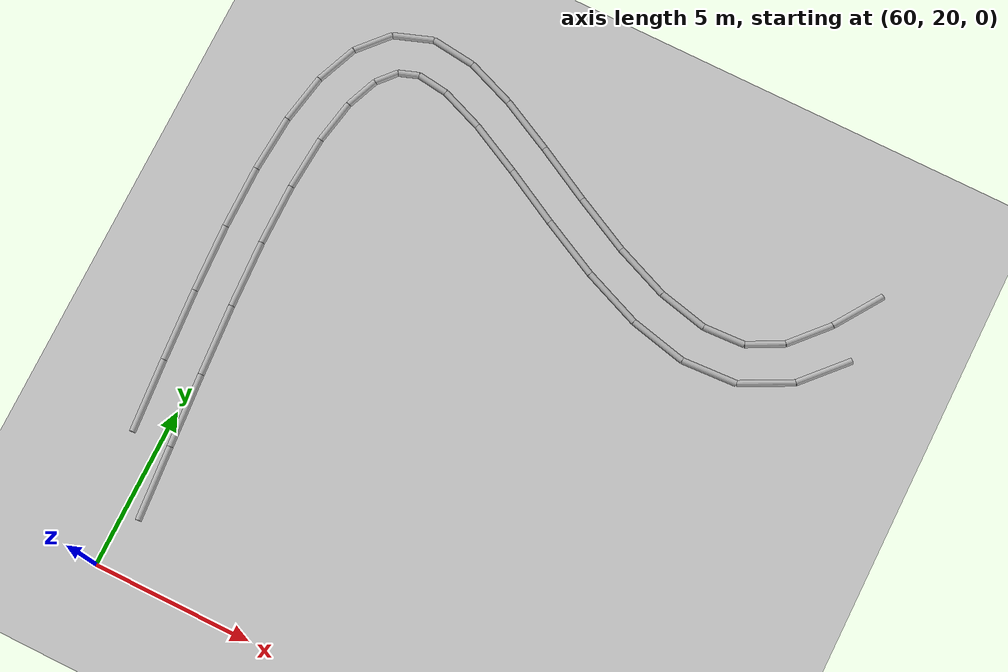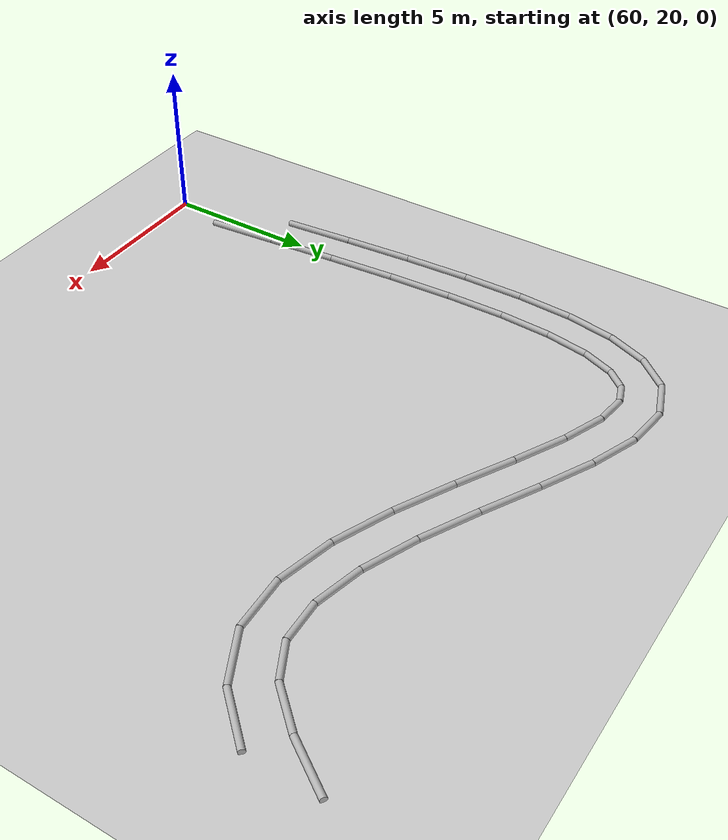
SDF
<sdf version="1.6">
 <world name="default">
  <model name="ground_plane">
   <static>true</static>
   <link name="link">
    <collision name="collision">
     <geometry><plane><normal>0 0 1</normal><size>5000 5000</size></plane></geometry>
     <surface>
      <friction>
       <ode><mu>50</mu></ode>
       <bullet><friction>1</friction><rolling_friction>0.1</rolling_friction></bullet>
      </friction>
     </surface>
    </collision>
    <visual name="visual">
     <geometry><plane><normal>0 0 1</normal><size>5000 5000</size></plane></geometry>
     <material>
      <ambient>0.8 0.8 0.8 1</ambient>
      <diffuse>0.8 0.8 0.8 1</diffuse>
      <specular>0.8 0.8 0.8 1</specular>
     </material>
    </visual>
    <inertial>
     <mass>1</mass>
     <inertia><ixx>1</ixx><ixy>0</ixy><ixz>0</ixz><iyy>1</iyy><iyz>0</iyz><izz>1</izz></inertia>
    </inertial>
   </link>
  </model>
  <model name="line_model">
   <static>true</static>
   <link name="cylinder_(77.15760487872598, 37.420404247764)_(76.18096325448104, 35.959355968379846)">
    <pose>76.66928406660351 36.68988010807192 0.05 0 1.5707963267948966 -2.160034375592786</pose>
    <visual name="visual">
     <geometry><cylinder><radius>0.1</radius><length>1.757410292703207</length></cylinder></geometry>
    </visual>
    <collision name="collision">
     <geometry><cylinder><radius>0.1</radius><length>1.757410292703207</length></cylinder></geometry>
    </collision>
   </link>
   <link name="cylinder_(76.18096325448104, 35.959355968379846)_(75.16189564360738, 34.837754107777634)">
    <pose>75.67142944904421 35.39855503807874 0.05 0 1.5707963267948966 -2.3083328533729532</pose>
    <visual name="visual">
     <geometry><cylinder><radius>0.1</radius><length>1.515417278916305</length></cylinder></geometry>
    </visual>
    <collision name="collision">
     <geometry><cylinder><radius>0.1</radius><length>1.515417278916305</length></cylinder></geometry>
    </collision>
   </link>
   <link name="cylinder_(75.16189564360738, 34.837754107777634)_(74.08070139135593, 34.278101917093394)">
    <pose>74.62129851748165 34.55792801243551 0.05 0 1.5707963267948966 -2.6639453863870792</pose>
    <visual name="visual">
     <geometry><cylinder><radius>0.1</radius><length>1.2174529090027426</length></cylinder></geometry>
    </visual>
    <collision name="collision">
     <geometry><cylinder><radius>0.1</radius><length>1.2174529090027426</length></cylinder></geometry>
    </collision>
   </link>
   <link name="cylinder_(74.08070139135593, 34.278101917093394)_(72.77386654651816, 34.21410954215724)">
    <pose>73.42728396893705 34.24610572962531 0.05 0 1.5707963267948966 -3.0926642817840433</pose>
    <visual name="visual">
     <geometry><cylinder><radius>0.1</radius><length>1.3084006785889857</length></cylinder></geometry>
    </visual>
    <collision name="collision">
     <geometry><cylinder><radius>0.1</radius><length>1.3084006785889857</length></cylinder></geometry>
    </collision>
   </link>
   <link name="cylinder_(72.77386654651816, 34.21410954215724)_(71.23810365712002, 34.571615126325)">
    <pose>72.00598510181909 34.392862334241116 0.05 0 1.5707963267948966 2.912878939105555</pose>
    <visual name="visual">
     <geometry><cylinder><radius>0.1</radius><length>1.5768252582843998</length></cylinder></geometry>
    </visual>
    <collision name="collision">
     <geometry><cylinder><radius>0.1</radius><length>1.5768252582843998</length></cylinder></geometry>
    </collision>
   </link>
   <link name="cylinder_(71.23810365712002, 34.571615126325)_(69.56526277833004, 35.25021989044286)">
    <pose>70.40168321772504 34.91091750838393 0.05 0 1.5707963267948966 2.756216440757653</pose>
    <visual name="visual">
     <geometry><cylinder><radius>0.1</radius><length>1.8052426517325304</length></cylinder></geometry>
    </visual>
    <collision name="collision">
     <geometry><cylinder><radius>0.1</radius><length>1.8052426517325304</length></cylinder></geometry>
    </collision>
   </link>
   <link name="cylinder_(69.56526277833004, 35.25021989044286)_(67.84224002252117, 36.11618392326214)">
    <pose>68.7037514004256 35.6832019068525 0.05 0 1.5707963267948966 2.675879813267719</pose>
    <visual name="visual">
     <geometry><cylinder><radius>0.1</radius><length>1.9283934046692426</length></cylinder></geometry>
    </visual>
    <collision name="collision">
     <geometry><cylinder><radius>0.1</radius><length>1.9283934046692426</length></cylinder></geometry>
    </collision>
   </link>
   <link name="cylinder_(67.84224002252117, 36.11618392326214)_(66.14093652019167, 37.027943111810046)">
    <pose>66.99158827135642 36.572063517536094 0.05 0 1.5707963267948966 2.6496251953056777</pose>
    <visual name="visual">
     <geometry><cylinder><radius>0.1</radius><length>1.9302171963124093</length></cylinder></geometry>
    </visual>
    <collision name="collision">
     <geometry><cylinder><radius>0.1</radius><length>1.9302171963124093</length></cylinder></geometry>
    </collision>
   </link>
   <link name="cylinder_(66.14093652019167, 37.027943111810046)_(64.52025449451253, 37.844097197257604)">
    <pose>65.3305955073521 37.43602015453382 0.05 0 1.5707963267948966 2.6750797182967294</pose>
    <visual name="visual">
     <geometry><cylinder><radius>0.1</radius><length>1.8145847237184034</length></cylinder></geometry>
    </visual>
    <collision name="collision">
     <geometry><cylinder><radius>0.1</radius><length>1.8145847237184034</length></cylinder></geometry>
    </collision>
   </link>
   <link name="cylinder_(64.52025449451253, 37.844097197257604)_(63.01762760568316, 38.42287492648279)">
    <pose>63.768941050097844 38.1334860618702 0.05 0 1.5707963267948966 2.773929430784182</pose>
    <visual name="visual">
     <geometry><cylinder><radius>0.1</radius><length>1.6102394936406483</length></cylinder></geometry>
    </visual>
    <collision name="collision">
     <geometry><cylinder><radius>0.1</radius><length>1.6102394936406483</length></cylinder></geometry>
    </collision>
   </link>
   <link name="cylinder_(63.01762760568316, 38.42287492648279)_(61.62426686438283, 38.592829259338814)">
    <pose>62.320947235032996 38.5078520929108 0.05 0 1.5707963267948966 3.0202178176229197</pose>
    <visual name="visual">
     <geometry><cylinder><radius>0.1</radius><length>1.4036875117537853</length></cylinder></geometry>
    </visual>
    <collision name="collision">
     <geometry><cylinder><radius>0.1</radius><length>1.4036875117537853</length></cylinder></geometry>
    </collision>
   </link>
   <link name="cylinder_(61.62426686438283, 38.592829259338814)_(60.42229732265592, 38.164679562914976)">
    <pose>61.02328209351938 38.37875441112689 0.05 0 1.5707963267948966 -2.7993991479869305</pose>
    <visual name="visual">
     <geometry><cylinder><radius>0.1</radius><length>1.275947860136543</length></cylinder></geometry>
    </visual>
    <collision name="collision">
     <geometry><cylinder><radius>0.1</radius><length>1.275947860136543</length></cylinder></geometry>
    </collision>
   </link>
   <link name="cylinder_(60.42229732265592, 38.164679562914976)_(59.580198368407444, 37.221820516491704)">
    <pose>60.00124784553168 37.693250039703344 0.05 0 1.5707963267948966 -2.299804776531729</pose>
    <visual name="visual">
     <geometry><cylinder><radius>0.1</radius><length>1.2641652701164443</length></cylinder></geometry>
    </visual>
    <collision name="collision">
     <geometry><cylinder><radius>0.1</radius><length>1.2641652701164443</length></cylinder></geometry>
    </collision>
   </link>
   <link name="cylinder_(59.580198368407444, 37.221820516491704)_(59.06511947305991, 35.945814277640835)">
    <pose>59.32265892073367 36.58381739706627 0.05 0 1.5707963267948966 -1.9544580784170469</pose>
    <visual name="visual">
     <geometry><cylinder><radius>0.1</radius><length>1.3760443997265412</length></cylinder></geometry>
    </visual>
    <collision name="collision">
     <geometry><cylinder><radius>0.1</radius><length>1.3760443997265412</length></cylinder></geometry>
    </collision>
   </link>
   <link name="cylinder_(59.06511947305991, 35.945814277640835)_(58.775828783934834, 34.398682107155686)">
    <pose>58.920474128497375 35.17224819239826 0.05 0 1.5707963267948966 -1.7556468335398057</pose>
    <visual name="visual">
     <geometry><cylinder><radius>0.1</radius><length>1.5739463319200402</length></cylinder></geometry>
    </visual>
    <collision name="collision">
     <geometry><cylinder><radius>0.1</radius><length>1.5739463319200402</length></cylinder></geometry>
    </collision>
   </link>
   <link name="cylinder_(58.775828783934834, 34.398682107155686)_(58.65215696140401, 32.61141463670493)">
    <pose>58.71399287266942 33.50504837193031 0.05 0 1.5707963267948966 -1.6398822390629204</pose>
    <visual name="visual">
     <geometry><cylinder><radius>0.1</radius><length>1.7915411607383027</length></cylinder></geometry>
    </visual>
    <collision name="collision">
     <geometry><cylinder><radius>0.1</radius><length>1.7915411607383027</length></cylinder></geometry>
    </collision>
   </link>
   <link name="cylinder_(58.65215696140401, 32.61141463670493)_(58.65453021128138, 30.622022155483855)">
    <pose>58.6533435863427 31.61671839609439 0.05 0 1.5707963267948966 -1.569603375291381</pose>
    <visual name="visual">
     <geometry><cylinder><radius>0.1</radius><length>1.9893938968072469</length></cylinder></geometry>
    </visual>
    <collision name="collision">
     <geometry><cylinder><radius>0.1</radius><length>1.9893938968072469</length></cylinder></geometry>
    </collision>
   </link>
   <link name="cylinder_(58.65453021128138, 30.622022155483855)_(58.74976085944394, 28.47510862746113)">
    <pose>58.70214553536266 29.548565391472494 0.05 0 1.5707963267948966 -1.526468381710071</pose>
    <visual name="visual">
     <geometry><cylinder><radius>0.1</radius><length>2.14902456318127</length></cylinder></geometry>
    </visual>
    <collision name="collision">
     <geometry><cylinder><radius>0.1</radius><length>2.14902456318127</length></cylinder></geometry>
    </collision>
   </link>
   <link name="cylinder_(58.74976085944394, 28.47510862746113)_(58.9066471481771, 26.21888812536639)">
    <pose>58.82820400381052 27.346998376413758 0.05 0 1.5707963267948966 -1.5013730744378355</pose>
    <visual name="visual">
     <geometry><cylinder><radius>0.1</radius><length>2.261668468557029</length></cylinder></geometry>
    </visual>
    <collision name="collision">
     <geometry><cylinder><radius>0.1</radius><length>2.261668468557029</length></cylinder></geometry>
    </collision>
   </link>
   <link name="cylinder_(58.9066471481771, 26.21888812536639)_(59.09466042212523, 23.903551695813437)">
    <pose>59.000653785151165 25.061219910589912 0.05 0 1.5707963267948966 -1.4897706728845757</pose>
    <visual name="visual">
     <geometry><cylinder><radius>0.1</radius><length>2.3229575487287133</length></cylinder></geometry>
    </visual>
    <collision name="collision">
     <geometry><cylinder><radius>0.1</radius><length>2.3229575487287133</length></cylinder></geometry>
    </collision>
   </link>
   <link name="cylinder_(77.14481329374476, 35.24451815333971)_(75.92539158931905, 33.911971227788044)">
    <pose>76.5351024415319 34.57824469056388 0.05 0 1.5707963267948966 -2.311894882018518</pose>
    <visual name="visual">
     <geometry><cylinder><radius>0.1</radius><length>1.8062864119573379</length></cylinder></geometry>
    </visual>
    <collision name="collision">
     <geometry><cylinder><radius>0.1</radius><length>1.8062864119573379</length></cylinder></geometry>
    </collision>
   </link>
   <link name="cylinder_(75.92539158931905, 33.911971227788044)_(74.37231957365518, 33.11407492610371)">
    <pose>75.14885558148711 33.51302307694588 0.05 0 1.5707963267948966 -2.6670028208831704</pose>
    <visual name="visual">
     <geometry><cylinder><radius>0.1</radius><length>1.746044442183468</length></cylinder></geometry>
    </visual>
    <collision name="collision">
     <geometry><cylinder><radius>0.1</radius><length>1.746044442183468</length></cylinder></geometry>
    </collision>
   </link>
   <link name="cylinder_(74.37231957365518, 33.11407492610371)_(72.64186589929245, 33.021391709167396)">
    <pose>73.50709273647382 33.06773331763556 0.05 0 1.5707963267948966 -3.0880837129295338</pose>
    <visual name="visual">
     <geometry><cylinder><radius>0.1</radius><length>1.732933956565312</length></cylinder></geometry>
    </visual>
    <collision name="collision">
     <geometry><cylinder><radius>0.1</radius><length>1.732933956565312</length></cylinder></geometry>
    </collision>
   </link>
   <link name="cylinder_(72.64186589929245, 33.021391709167396)_(70.85941832321377, 33.43293280983619)">
    <pose>71.75064211125311 33.227162259501796 0.05 0 1.5707963267948966 2.914683523977031</pose>
    <visual name="visual">
     <geometry><cylinder><radius>0.1</radius><length>1.8293401649251697</length></cylinder></geometry>
    </visual>
    <collision name="collision">
     <geometry><cylinder><radius>0.1</radius><length>1.8293401649251697</length></cylinder></geometry>
    </collision>
   </link>
   <link name="cylinder_(70.85941832321377, 33.43293280983619)_(69.05925844043506, 34.16212080946197)">
    <pose>69.95933838182441 33.79752680964908 0.05 0 1.5707963267948966 2.756724561383505</pose>
    <visual name="visual">
     <geometry><cylinder><radius>0.1</radius><length>1.9422385904837032</length></cylinder></geometry>
    </visual>
    <collision name="collision">
     <geometry><cylinder><radius>0.1</radius><length>1.9422385904837032</length></cylinder></geometry>
    </collision>
   </link>
   <link name="cylinder_(69.05925844043506, 34.16212080946197)_(67.28062178876777, 35.05571942149148)">
    <pose>68.16994011460142 34.60892011547672 0.05 0 1.5707963267948966 2.6760216996807062</pose>
    <visual name="visual">
     <geometry><cylinder><radius>0.1</radius><length>1.9904941140519061</length></cylinder></geometry>
    </visual>
    <collision name="collision">
     <geometry><cylinder><radius>0.1</radius><length>1.9904941140519061</length></cylinder></geometry>
    </collision>
   </link>
   <link name="cylinder_(67.28062178876777, 35.05571942149148)_(65.57773888789832, 35.96831656109553)">
    <pose>66.42918033833305 35.512017991293504 0.05 0 1.5707963267948966 2.649629062651305</pose>
    <visual name="visual">
     <geometry><cylinder><radius>0.1</radius><length>1.9320051017756277</length></cylinder></geometry>
    </visual>
    <collision name="collision">
     <geometry><cylinder><radius>0.1</radius><length>1.9320051017756277</length></cylinder></geometry>
    </collision>
   </link>
   <link name="cylinder_(65.57773888789832, 35.96831656109553)_(64.01783916484005, 36.75433628930114)">
    <pose>64.79778902636919 36.361326425198335 0.05 0 1.5707963267948966 2.6748369400608665</pose>
    <visual name="visual">
     <geometry><cylinder><radius>0.1</radius><length>1.7467438733614278</length></cylinder></geometry>
    </visual>
    <collision name="collision">
     <geometry><cylinder><radius>0.1</radius><length>1.7467438733614278</length></cylinder></geometry>
    </collision>
   </link>
   <link name="cylinder_(64.01783916484005, 36.75433628930114)_(62.689620609578114, 37.26857366142841)">
    <pose>63.353729887209084 37.01145497536478 0.05 0 1.5707963267948966 2.7722012107908185</pose>
    <visual name="visual">
     <geometry><cylinder><radius>0.1</radius><length>1.4242909132036465</length></cylinder></geometry>
    </visual>
    <collision name="collision">
     <geometry><cylinder><radius>0.1</radius><length>1.4242909132036465</length></cylinder></geometry>
    </collision>
   </link>
   <link name="cylinder_(62.689620609578114, 37.26857366142841)_(61.727169405959884, 37.39724945567158)">
    <pose>62.208395007769 37.332911558549995 0.05 0 1.5707963267948966 3.008684889935484</pose>
    <visual name="visual">
     <geometry><cylinder><radius>0.1</radius><length>0.9710148193360841</length></cylinder></geometry>
    </visual>
    <collision name="collision">
     <geometry><cylinder><radius>0.1</radius><length>0.9710148193360841</length></cylinder></geometry>
    </collision>
   </link>
   <link name="cylinder_(61.727169405959884, 37.39724945567158)_(61.10879434718614, 37.180442886443736)">
    <pose>61.41798187657301 37.288846171057656 0.05 0 1.5707963267948966 -2.804377258556084</pose>
    <visual name="visual">
     <geometry><cylinder><radius>0.1</radius><length>0.6552807045639126</length></cylinder></geometry>
    </visual>
    <collision name="collision">
     <geometry><cylinder><radius>0.1</radius><length>0.6552807045639126</length></cylinder></geometry>
    </collision>
   </link>
   <link name="cylinder_(61.10879434718614, 37.180442886443736)_(60.61633138091618, 36.61648723606713)">
    <pose>60.86256286405116 36.898465061255436 0.05 0 1.5707963267948966 -2.2886229422959583</pose>
    <visual name="visual">
     <geometry><cylinder><radius>0.1</radius><length>0.7487093887077347</length></cylinder></geometry>
    </visual>
    <collision name="collision">
     <geometry><cylinder><radius>0.1</radius><length>0.7487093887077347</length></cylinder></geometry>
    </collision>
   </link>
   <link name="cylinder_(60.61633138091618, 36.61648723606713)_(60.222258251433196, 35.627962350503736)">
    <pose>60.419294816174684 36.12222479328543 0.05 0 1.5707963267948966 -1.95013634757472</pose>
    <visual name="visual">
     <geometry><cylinder><radius>0.1</radius><length>1.0641781245443038</length></cylinder></geometry>
    </visual>
    <collision name="collision">
     <geometry><cylinder><radius>0.1</radius><length>1.0641781245443038</length></cylinder></geometry>
    </collision>
   </link>
   <link name="cylinder_(60.222258251433196, 35.627962350503736)_(59.96743402712144, 34.25698897249416)">
    <pose>60.09484613927732 34.942475661498946 0.05 0 1.5707963267948966 -1.7545701604036745</pose>
    <visual name="visual">
     <geometry><cylinder><radius>0.1</radius><length>1.3944545128856185</length></cylinder></geometry>
    </visual>
    <collision name="collision">
     <geometry><cylinder><radius>0.1</radius><length>1.3944545128856185</length></cylinder></geometry>
    </collision>
   </link>
   <link name="cylinder_(59.96743402712144, 34.25698897249416)_(59.8516552633148, 32.57671847390355)">
    <pose>59.90954464521812 33.416853723198855 0.05 0 1.5707963267948966 -1.639592422245834</pose>
    <visual name="visual">
     <geometry><cylinder><radius>0.1</radius><length>1.6842546335345356</length></cylinder></geometry>
    </visual>
    <collision name="collision">
     <geometry><cylinder><radius>0.1</radius><length>1.6842546335345356</length></cylinder></geometry>
    </collision>
   </link>
   <link name="cylinder_(59.8516552633148, 32.57671847390355)_(59.85412296990506, 30.653282569070505)">
    <pose>59.85288911660993 31.615000521487026 0.05 0 1.5707963267948966 -1.5695133595641646</pose>
    <visual name="visual">
     <geometry><cylinder><radius>0.1</radius><length>1.923437487826604</length></cylinder></geometry>
    </visual>
    <collision name="collision">
     <geometry><cylinder><radius>0.1</radius><length>1.923437487826604</length></cylinder></geometry>
    </collision>
   </link>
   <link name="cylinder_(59.85412296990506, 30.653282569070505)_(59.947652036720925, 28.546219297560203)">
    <pose>59.900887503312994 29.599750933315356 0.05 0 1.5707963267948966 -1.52643709325</pose>
    <visual name="visual">
     <geometry><cylinder><radius>0.1</radius><length>2.109138050599615</length></cylinder></geometry>
    </visual>
    <collision name="collision">
     <geometry><cylinder><radius>0.1</radius><length>2.109138050599615</length></cylinder></geometry>
    </collision>
   </link>
   <link name="cylinder_(59.947652036720925, 28.546219297560203)_(60.103071437182734, 26.31145659017675)">
    <pose>60.02536173695183 27.428837943868476 0.05 0 1.5707963267948966 -1.5013618614944437</pose>
    <visual name="visual">
     <geometry><cylinder><radius>0.1</radius><length>2.240160607713592</length></cylinder></geometry>
    </visual>
    <collision name="collision">
     <geometry><cylinder><radius>0.1</radius><length>2.240160607713592</length></cylinder></geometry>
    </collision>
   </link>
   <link name="cylinder_(60.103071437182734, 26.31145659017675)_(60.29053704235184, 24.002945403840457)">
    <pose>60.19680423976729 25.1572009970086 0.05 0 1.5707963267948966 -1.4897678479387344</pose>
    <visual name="visual">
     <geometry><cylinder><radius>0.1</radius><length>2.3161103709800233</length></cylinder></geometry>
    </visual>
    <collision name="collision">
     <geometry><cylinder><radius>0.1</radius><length>2.3161103709800233</length></cylinder></geometry>
    </collision>
   </link>
   <link name="cylinder_(60.29053704235184, 24.002945403840457)_(60.47993901660912, 21.673396200427725)">
    <pose>60.38523802948048 22.83817080213409 0.05 0 1.5707963267948966 -1.4896706382122629</pose>
    <visual name="visual">
     <geometry><cylinder><radius>0.1</radius><length>2.3372361025308184</length></cylinder></geometry>
    </visual>
    <collision name="collision">
     <geometry><cylinder><radius>0.1</radius><length>2.3372361025308184</length></cylinder></geometry>
    </collision>
   </link>
  </model>
 </world>
</sdf>
